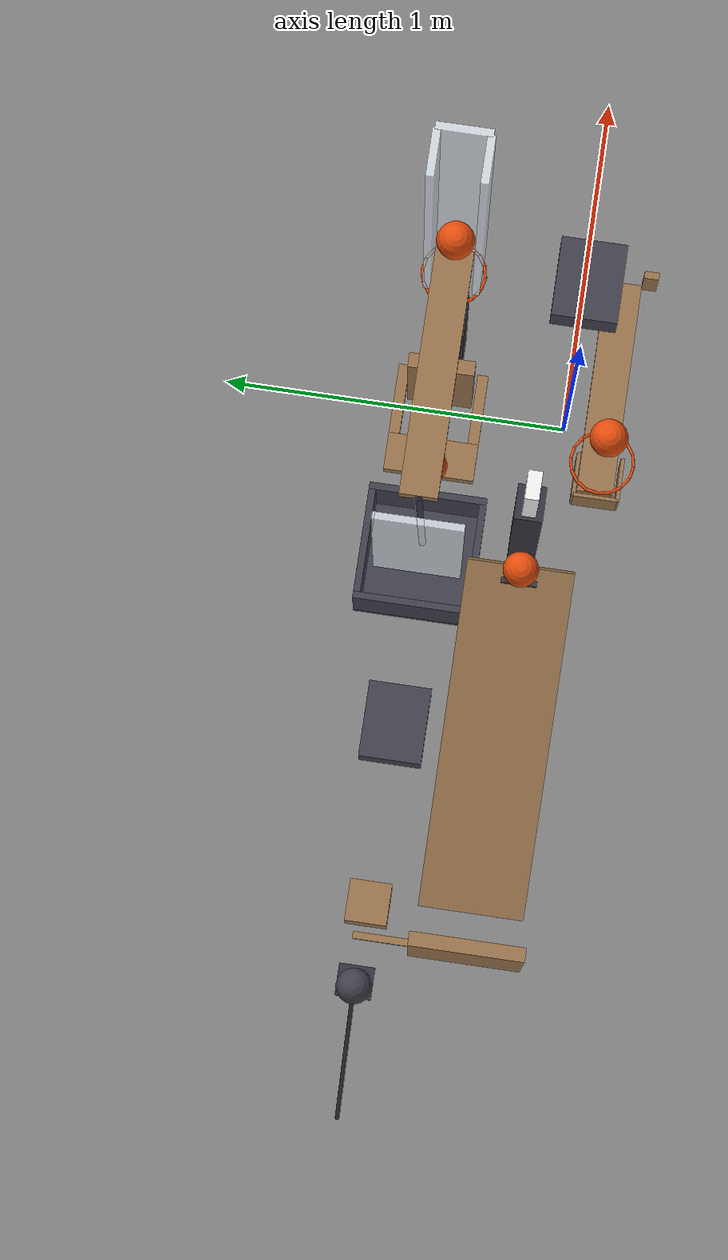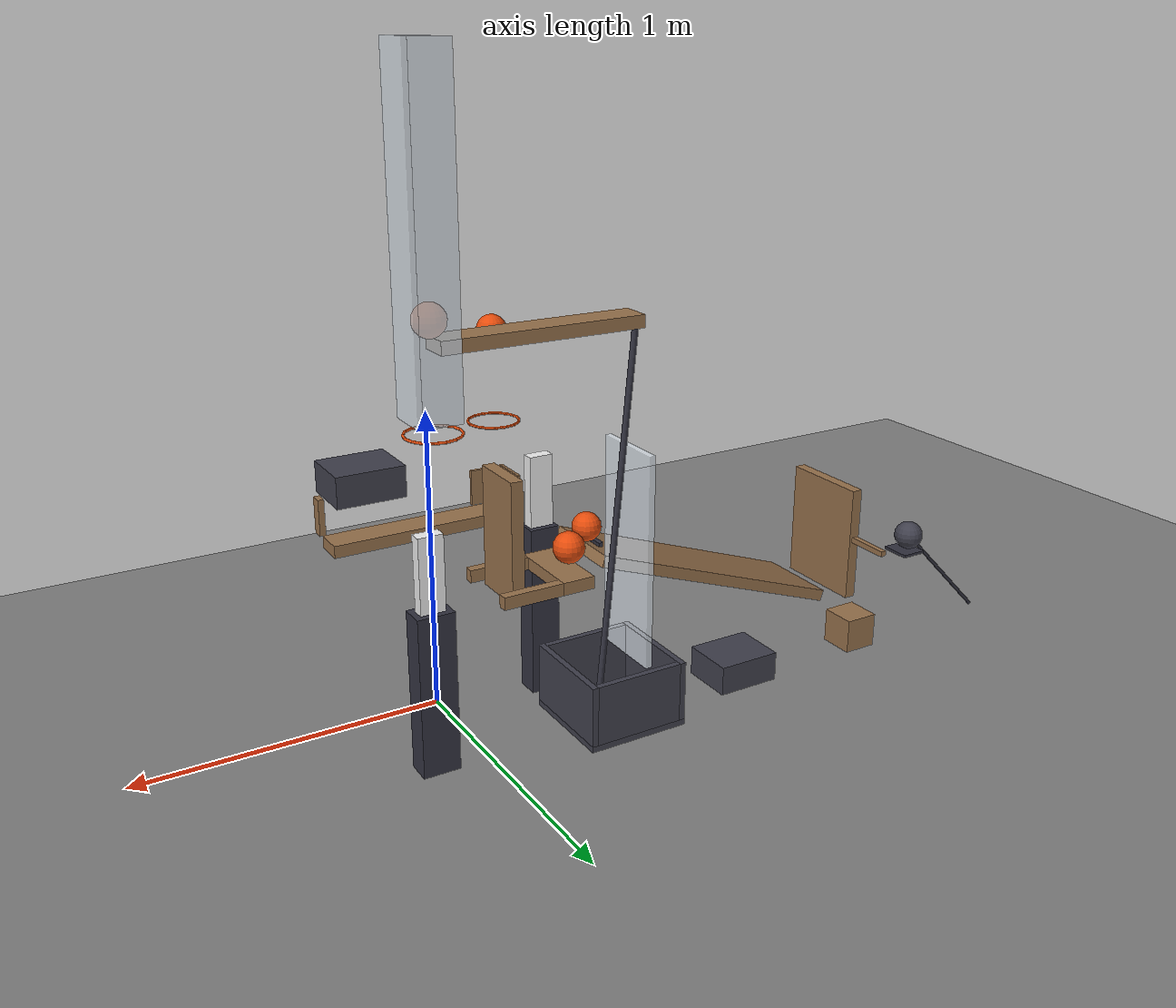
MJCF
<mujoco model="retained_ball_cascade">
  <compiler angle="radian"/>
  <option timestep="0.002"/>
  <worldbody>
    <geom name="floor" type="plane" size="8 8 0.1" friction="0.72 0.005 0.0002"/>
    <body name="lever1" pos="0 -0.1 0.58">
      <joint name="lever1_hinge" type="hinge" pos="0 0 0" axis="0 1 0" limited="true" range="-0.785398 0" damping="0.04"/>
      <geom name="lever1" type="box" pos="0 0 0" size="0.3 0.05 0.02" mass="0.494" friction="0.72 0.005 0.0001" solref="0.01 0.715646" rgba="0.6 0.45 0.3 1"/>
      <geom name="lever1 cradle back" type="box" pos="-0.337 0 0.08" size="0.005 0.06 0.06" mass="0.001" friction="0.72 0.005 0.0001" solref="0.01 0.715646" rgba="0.6 0.45 0.3 1"/>
      <geom name="lever1 cradle left side" type="box" pos="-0.28 0.06 0.08" size="0.06 0.005 0.06" mass="0.001" friction="0.72 0.005 0.0001" solref="0.01 0.715646" rgba="0.6 0.45 0.3 1"/>
      <geom name="lever1 cradle right side" type="box" pos="-0.28 -0.06 0.08" size="0.06 0.005 0.06" mass="0.001" friction="0.72 0.005 0.0001" solref="0.01 0.715646" rgba="0.6 0.45 0.3 1"/>
      <geom name="lever1 cradle balance" type="box" pos="0.299 -0.07 0.08" size="0.01 0.02 0.06" mass="0.003" friction="0.72 0.005 0.0001" solref="0.01 0.715646" rgba="0.6 0.45 0.3 1"/>
    </body>
    <body name="ring1">
      <geom name="ring1_00" type="capsule" size="0.004" fromto="-0.196 -0.1 0.9 -0.202394 -0.0678546 0.9" friction="0.72 0.005 0.0001" solref="0.01 0.715646" rgba="0.9 0.3 0.05 1"/>
      <geom name="ring1_01" type="capsule" size="0.004" fromto="-0.202394 -0.0678546 0.9 -0.220603 -0.040603 0.9" friction="0.72 0.005 0.0001" solref="0.01 0.715646" rgba="0.9 0.3 0.05 1"/>
      <geom name="ring1_02" type="capsule" size="0.004" fromto="-0.220603 -0.040603 0.9 -0.247855 -0.0223941 0.9" friction="0.72 0.005 0.0001" solref="0.01 0.715646" rgba="0.9 0.3 0.05 1"/>
      <geom name="ring1_03" type="capsule" size="0.004" fromto="-0.247855 -0.0223941 0.9 -0.28 -0.016 0.9" friction="0.72 0.005 0.0001" solref="0.01 0.715646" rgba="0.9 0.3 0.05 1"/>
      <geom name="ring1_04" type="capsule" size="0.004" fromto="-0.28 -0.016 0.9 -0.312145 -0.0223941 0.9" friction="0.72 0.005 0.0001" solref="0.01 0.715646" rgba="0.9 0.3 0.05 1"/>
      <geom name="ring1_05" type="capsule" size="0.004" fromto="-0.312145 -0.0223941 0.9 -0.339397 -0.040603 0.9" friction="0.72 0.005 0.0001" solref="0.01 0.715646" rgba="0.9 0.3 0.05 1"/>
      <geom name="ring1_06" type="capsule" size="0.004" fromto="-0.339397 -0.040603 0.9 -0.357606 -0.0678546 0.9" friction="0.72 0.005 0.0001" solref="0.01 0.715646" rgba="0.9 0.3 0.05 1"/>
      <geom name="ring1_07" type="capsule" size="0.004" fromto="-0.357606 -0.0678546 0.9 -0.364 -0.1 0.9" friction="0.72 0.005 0.0001" solref="0.01 0.715646" rgba="0.9 0.3 0.05 1"/>
      <geom name="ring1_08" type="capsule" size="0.004" fromto="-0.364 -0.1 0.9 -0.357606 -0.132145 0.9" friction="0.72 0.005 0.0001" solref="0.01 0.715646" rgba="0.9 0.3 0.05 1"/>
      <geom name="ring1_09" type="capsule" size="0.004" fromto="-0.357606 -0.132145 0.9 -0.339397 -0.159397 0.9" friction="0.72 0.005 0.0001" solref="0.01 0.715646" rgba="0.9 0.3 0.05 1"/>
      <geom name="ring1_10" type="capsule" size="0.004" fromto="-0.339397 -0.159397 0.9 -0.312145 -0.177606 0.9" friction="0.72 0.005 0.0001" solref="0.01 0.715646" rgba="0.9 0.3 0.05 1"/>
      <geom name="ring1_11" type="capsule" size="0.004" fromto="-0.312145 -0.177606 0.9 -0.28 -0.184 0.9" friction="0.72 0.005 0.0001" solref="0.01 0.715646" rgba="0.9 0.3 0.05 1"/>
      <geom name="ring1_12" type="capsule" size="0.004" fromto="-0.28 -0.184 0.9 -0.247855 -0.177606 0.9" friction="0.72 0.005 0.0001" solref="0.01 0.715646" rgba="0.9 0.3 0.05 1"/>
      <geom name="ring1_13" type="capsule" size="0.004" fromto="-0.247855 -0.177606 0.9 -0.220603 -0.159397 0.9" friction="0.72 0.005 0.0001" solref="0.01 0.715646" rgba="0.9 0.3 0.05 1"/>
      <geom name="ring1_14" type="capsule" size="0.004" fromto="-0.220603 -0.159397 0.9 -0.202394 -0.132145 0.9" friction="0.72 0.005 0.0001" solref="0.01 0.715646" rgba="0.9 0.3 0.05 1"/>
      <geom name="ring1_15" type="capsule" size="0.004" fromto="-0.202394 -0.132145 0.9 -0.196 -0.1 0.9" friction="0.72 0.005 0.0001" solref="0.01 0.715646" rgba="0.9 0.3 0.05 1"/>
    </body>
    <body name="ball1" pos="-0.28 -0.1 1.2">
      <freejoint/>
      <geom name="ball1" type="sphere" pos="0 0 0" size="0.05" mass="0.2" condim="6" friction="0.72 0.005 0.0001" solref="0.01 0.715646" rgba="0.9 0.3 0.05 1"/>
    </body>
    <body name="cart1" pos="0.22 0 0.823">
      <joint name="cart1_slide" type="slide" pos="0 0 0" axis="1 0 0" limited="true" range="-0.65 0" damping="0.2"/>
      <geom name="cart1" type="box" pos="0 0 0" size="0.11 0.09 0.05" mass="0.5" friction="0.72 0.005 0.0001" solref="0.01 0.715646" rgba="0.25 0.25 0.3 1"/>
    </body>
    <body name="domino1 pedestal">
      <geom name="domino1 pedestal" type="box" pos="-0.35 0.07 0.2915" size="0.05 0.04 0.2915" friction="0.72 0.005 0.0001" solref="0.01 0.715646" rgba="0.2 0.2 0.25 1"/>
    </body>
    <body name="domino1" pos="-0.35 0.07 0.703">
      <freejoint/>
      <geom name="domino1" type="box" pos="0 0 0" size="0.04 0.02 0.12" mass="0.25" friction="0.72 0.005 0.0001" solref="0.01 0.715646" rgba="0.95 0.95 0.95 1"/>
    </body>
    <body name="ramp1">
      <geom name="ramp1" type="box" pos="-0.975905 0.07 0.302216" size="0.5 0.15 0.02" euler="0 2.79253 0" friction="0.72 0.005 0.0001" solref="0.01 0.715646" rgba="0.6 0.45 0.3 1"/>
    </body>
    <body name="ball2 chock">
      <geom name="ball2 chock" type="box" pos="-0.556 0.07 0.4852" size="0.008 0.05 0.0075" friction="0.72 0.005 0.0001" solref="0.01 0.715646" rgba="0.2 0.2 0.25 1"/>
    </body>
    <body name="ball2" pos="-0.53 0.07 0.539005">
      <freejoint/>
      <geom name="ball2" type="sphere" pos="0 0 0" size="0.05" mass="0.2" condim="6" friction="0.72 0.005 0.0001" solref="0.01 0.715646" rgba="0.9 0.3 0.05 1"/>
    </body>
    <body name="door1" pos="-1.57259 0.07 0.1">
      <joint name="door1_hinge" type="hinge" pos="0 0 0" axis="0 1 0" limited="true" range="-1.22173 0" damping="0.04"/>
      <geom name="door1" type="box" pos="0 0 0.21" size="0.02 0.16 0.21" mass="0.445" friction="0.72 0.005 0.0001" solref="0.01 0.715646" rgba="0.6 0.45 0.3 1"/>
      <geom name="door1 striker" type="box" pos="0 0.145 0.23" size="0.01 0.17 0.01" mass="0.005" friction="0.72 0.005 0.0001" solref="0.01 0.715646" rgba="0.6 0.45 0.3 1"/>
    </body>
    <body name="pendulum release plate" pos="-1.71259 0.36 0.25">
      <joint name="pendulum_release_hinge" type="hinge" pos="0 0 0" axis="0 1 0" limited="true" range="-1.39626 0" damping="0.04"/>
      <geom name="pendulum release plate" type="box" pos="0.015 0 0.06" size="0.045 0.05 0.005" mass="0.02" friction="0.72 0.005 0.0001" solref="0.01 0.715646" rgba="0.2 0.2 0.25 1"/>
    </body>
    <body name="pendulum1" pos="-2.06615 0.36 0.0114466">
      <joint name="pendulum1_hinge" type="hinge" pos="0 0 0" axis="0 1 0" limited="true" range="0 0.663225" stiffness="70" springref="0.663225" damping="0.04"/>
      <geom name="pendulum1" type="capsule" size="0.006" fromto="0 0 0 0.353553 0 0.353553" mass="0.1" friction="0.72 0.005 0.0001" solref="0.01 0.715646" rgba="0.2 0.2 0.25 1"/>
      <geom name="pendulum1 bob" type="sphere" pos="0.353553 0 0.353553" size="0.05" mass="0.25" friction="0.72 0.005 0.0001" solref="0.01 0.715646" rgba="0.25 0.25 0.3 1"/>
    </body>
    <body name="block1" pos="-1.46037 0.36 0.06">
      <freejoint/>
      <geom name="block1" type="box" pos="0 0 0" size="0.06 0.06 0.06" mass="0.35" friction="0.72 0.005 0.0001" solref="0.01 0.715646" rgba="0.6 0.45 0.3 1"/>
    </body>
    <body name="cart2" pos="-0.940372 0.36 0.055">
      <joint name="cart2_slide" type="slide" pos="0 0 0" axis="1 0 0" limited="true" range="0 1.4" damping="0.2"/>
      <geom name="cart2" type="box" pos="0 0 0" size="0.11 0.09 0.05" mass="0.5" friction="0.72 0.005 0.0001" solref="0.01 0.715646" rgba="0.25 0.25 0.3 1"/>
    </body>
    <body name="seesaw1" pos="-0.200372 0.36 1.3">
      <joint name="seesaw1_hinge" type="hinge" pos="0 0 0" axis="0 1 0" limited="true" range="-0.733038 0" stiffness="0.8" springref="-0.733038" damping="0.04"/>
      <geom name="seesaw1" type="box" pos="0 0 0" size="0.325 0.05 0.02" mass="0.535" friction="0.72 0.005 0.0001" solref="0.01 0.715646" rgba="0.6 0.45 0.3 1"/>
      <geom name="seesaw1 left striker" type="capsule" size="0.01" fromto="-0.325 0 0 -0.2 0 -1.255" mass="0.015" friction="0.72 0.005 0.0001" solref="0.01 0.715646" rgba="0.2 0.2 0.25 1"/>
    </body>
    <body name="ball3" pos="0.134628 0.36 1.36899">
      <freejoint/>
      <geom name="ball3" type="sphere" pos="0 0 0" size="0.05" mass="0.2" condim="6" friction="0.72 0.005 0.0001" solref="0.01 0.715646" rgba="0.9 0.3 0.05 1"/>
    </body>
    <body name="ball3 right guide">
      <geom name="ball3 right guide" type="box" pos="0.199628 0.36 1.59" size="0.01 0.07 0.5" friction="0.72 0.005 0.0001" solref="0.01 0.715646" rgba="0.92 0.95 0.98 0.85"/>
    </body>
    <body name="ball3 left-side guide">
      <geom name="ball3 left-side guide" type="box" pos="0.134628 0.425 1.59" size="0.06 0.01 0.5" friction="0.72 0.005 0.0001" solref="0.01 0.715646" rgba="0.92 0.95 0.98 0.85"/>
    </body>
    <body name="ball3 right-side guide">
      <geom name="ball3 right-side guide" type="box" pos="0.134628 0.295 1.59" size="0.06 0.01 0.5" friction="0.72 0.005 0.0001" solref="0.01 0.715646" rgba="0.92 0.95 0.98 0.85"/>
    </body>
    <body name="ring2">
      <geom name="ring2_00" type="capsule" size="0.004" fromto="0.218628 0.36 1.04899 0.212234 0.392145 1.04899" friction="0.72 0.005 0.0001" solref="0.01 0.715646" rgba="0.9 0.3 0.05 1"/>
      <geom name="ring2_01" type="capsule" size="0.004" fromto="0.212234 0.392145 1.04899 0.194025 0.419397 1.04899" friction="0.72 0.005 0.0001" solref="0.01 0.715646" rgba="0.9 0.3 0.05 1"/>
      <geom name="ring2_02" type="capsule" size="0.004" fromto="0.194025 0.419397 1.04899 0.166773 0.437606 1.04899" friction="0.72 0.005 0.0001" solref="0.01 0.715646" rgba="0.9 0.3 0.05 1"/>
      <geom name="ring2_03" type="capsule" size="0.004" fromto="0.166773 0.437606 1.04899 0.134628 0.444 1.04899" friction="0.72 0.005 0.0001" solref="0.01 0.715646" rgba="0.9 0.3 0.05 1"/>
      <geom name="ring2_04" type="capsule" size="0.004" fromto="0.134628 0.444 1.04899 0.102483 0.437606 1.04899" friction="0.72 0.005 0.0001" solref="0.01 0.715646" rgba="0.9 0.3 0.05 1"/>
      <geom name="ring2_05" type="capsule" size="0.004" fromto="0.102483 0.437606 1.04899 0.0752311 0.419397 1.04899" friction="0.72 0.005 0.0001" solref="0.01 0.715646" rgba="0.9 0.3 0.05 1"/>
      <geom name="ring2_06" type="capsule" size="0.004" fromto="0.0752311 0.419397 1.04899 0.0570222 0.392145 1.04899" friction="0.72 0.005 0.0001" solref="0.01 0.715646" rgba="0.9 0.3 0.05 1"/>
      <geom name="ring2_07" type="capsule" size="0.004" fromto="0.0570222 0.392145 1.04899 0.050628 0.36 1.04899" friction="0.72 0.005 0.0001" solref="0.01 0.715646" rgba="0.9 0.3 0.05 1"/>
      <geom name="ring2_08" type="capsule" size="0.004" fromto="0.050628 0.36 1.04899 0.0570222 0.327855 1.04899" friction="0.72 0.005 0.0001" solref="0.01 0.715646" rgba="0.9 0.3 0.05 1"/>
      <geom name="ring2_09" type="capsule" size="0.004" fromto="0.0570222 0.327855 1.04899 0.0752311 0.300603 1.04899" friction="0.72 0.005 0.0001" solref="0.01 0.715646" rgba="0.9 0.3 0.05 1"/>
      <geom name="ring2_10" type="capsule" size="0.004" fromto="0.0752311 0.300603 1.04899 0.102483 0.282394 1.04899" friction="0.72 0.005 0.0001" solref="0.01 0.715646" rgba="0.9 0.3 0.05 1"/>
      <geom name="ring2_11" type="capsule" size="0.004" fromto="0.102483 0.282394 1.04899 0.134628 0.276 1.04899" friction="0.72 0.005 0.0001" solref="0.01 0.715646" rgba="0.9 0.3 0.05 1"/>
      <geom name="ring2_12" type="capsule" size="0.004" fromto="0.134628 0.276 1.04899 0.166773 0.282394 1.04899" friction="0.72 0.005 0.0001" solref="0.01 0.715646" rgba="0.9 0.3 0.05 1"/>
      <geom name="ring2_13" type="capsule" size="0.004" fromto="0.166773 0.282394 1.04899 0.194025 0.300603 1.04899" friction="0.72 0.005 0.0001" solref="0.01 0.715646" rgba="0.9 0.3 0.05 1"/>
      <geom name="ring2_14" type="capsule" size="0.004" fromto="0.194025 0.300603 1.04899 0.212234 0.327855 1.04899" friction="0.72 0.005 0.0001" solref="0.01 0.715646" rgba="0.9 0.3 0.05 1"/>
      <geom name="ring2_15" type="capsule" size="0.004" fromto="0.212234 0.327855 1.04899 0.218628 0.36 1.04899" friction="0.72 0.005 0.0001" solref="0.01 0.715646" rgba="0.9 0.3 0.05 1"/>
    </body>
    <body name="domino2 pedestal">
      <geom name="domino2 pedestal" type="box" pos="0.164628 0.36 0.259495" size="0.06 0.04 0.259495" friction="0.72 0.005 0.0001" solref="0.01 0.715646" rgba="0.2 0.2 0.25 1"/>
    </body>
    <body name="domino2" pos="0.164628 0.36 0.63899">
      <freejoint/>
      <geom name="domino2" type="box" pos="0 0 0" size="0.04 0.02 0.12" mass="0.25" friction="0.72 0.005 0.0001" solref="0.01 0.715646" rgba="0.95 0.95 0.95 1"/>
    </body>
    <body name="flap1" pos="-0.0753719 0.36 0.51899">
      <joint name="flap1_hinge" type="hinge" pos="0 0 0" axis="0 1 0" limited="true" range="-1.0472 0" damping="0.04"/>
      <geom name="flap1" type="box" pos="0 0 0.19" size="0.02 0.09 0.19" mass="0.28" friction="0.72 0.005 0.0001" solref="0.01 0.715646" rgba="0.6 0.45 0.3 1"/>
    </body>
    <body name="cup1">
      <geom name="cup1_base" type="box" pos="-0.450372 0.36 0.01" size="0.17 0.17 0.01" friction="0.72 0.005 0.0001" solref="0.01 0.715646" rgba="0.25 0.25 0.3 1"/>
      <geom name="cup1_near_wall" type="box" pos="-0.610372 0.36 0.12" size="0.01 0.17 0.1" friction="0.72 0.005 0.0001" solref="0.01 0.715646" rgba="0.25 0.25 0.3 1"/>
      <geom name="cup1_far_wall" type="box" pos="-0.290372 0.36 0.12" size="0.01 0.17 0.1" friction="0.72 0.005 0.0001" solref="0.01 0.715646" rgba="0.25 0.25 0.3 1"/>
      <geom name="cup1_left_wall" type="box" pos="-0.450372 0.52 0.12" size="0.15 0.01 0.1" friction="0.72 0.005 0.0001" solref="0.01 0.715646" rgba="0.25 0.25 0.3 1"/>
      <geom name="cup1_right_wall" type="box" pos="-0.450372 0.2 0.12" size="0.15 0.01 0.1" friction="0.72 0.005 0.0001" solref="0.01 0.715646" rgba="0.25 0.25 0.3 1"/>
    </body>
    <body name="shelf1">
      <geom name="shelf1_main_board" type="box" pos="-0.258372 0.36 0.55" size="0.052 0.125 0.02" friction="0.72 0.005 0.0001" solref="0.01 0.715646" rgba="0.6 0.45 0.3 1"/>
      <geom name="shelf1_left_finger" type="box" pos="-0.108372 0.47 0.55" size="0.098 0.015 0.02" friction="0.72 0.005 0.0001" solref="0.01 0.715646" rgba="0.6 0.45 0.3 1"/>
      <geom name="shelf1_right_finger" type="box" pos="-0.108372 0.25 0.55" size="0.098 0.015 0.02" friction="0.72 0.005 0.0001" solref="0.01 0.715646" rgba="0.6 0.45 0.3 1"/>
    </body>
    <body name="ball4" pos="-0.295372 0.36 0.62">
      <freejoint/>
      <geom name="ball4" type="sphere" pos="0 0 0" size="0.05" mass="0.2" condim="6" friction="0.72 0.005 0.0001" solref="0.01 0.715646" rgba="0.9 0.3 0.05 1"/>
    </body>
    <body name="cup1 catch backstop">
      <geom name="cup1 catch backstop" type="box" pos="-0.510372 0.36 0.56" size="0.01 0.125 0.35" friction="0.72 0.005 0.0001" solref="0.01 0.715646" rgba="0.92 0.95 0.98 0.85"/>
    </body>
  </worldbody>
  <keyframe>
    <key name="start" qpos="0 -0.28 -0.1 1.2 1 0 0 0 0 -0.35 0.07 0.703 1 0 0 0 -0.53 0.07 0.539005 1 0 0 0 0 0 0 -1.46037 0.36 0.06 1 0 0 0 0 0 0.134628 0.36 1.36899 1 0 0 0 0.164628 0.36 0.63899 1 0 0 0 0 -0.295372 0.36 0.62 1 0 0 0" qvel="0 0 0 0 0 0 0 0 0 0 0 0 0 0 0 0 0 0 0 0 0 0 0 0 0 0 0 0 0 0 0 0 0 0 0 0 0 0 0 0 0 0 0 0 0 0 0 0 0 0"/>
  </keyframe>
</mujoco>
